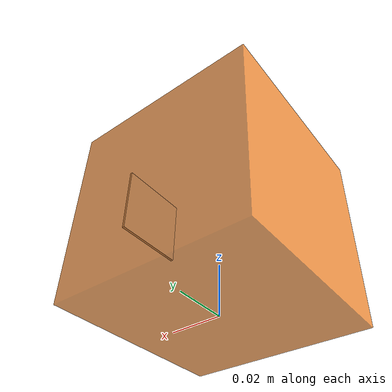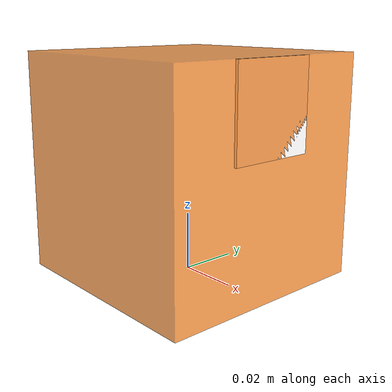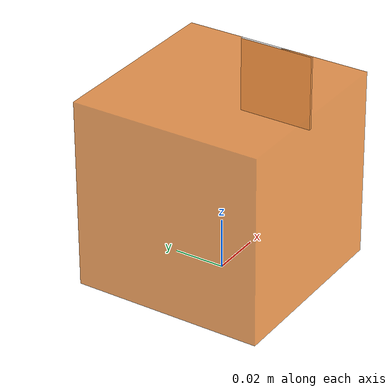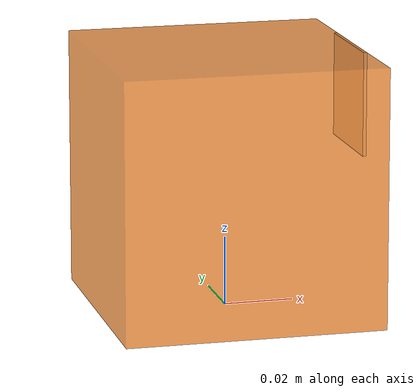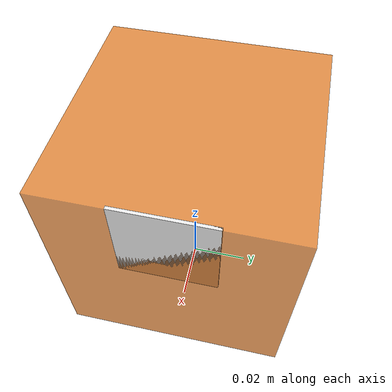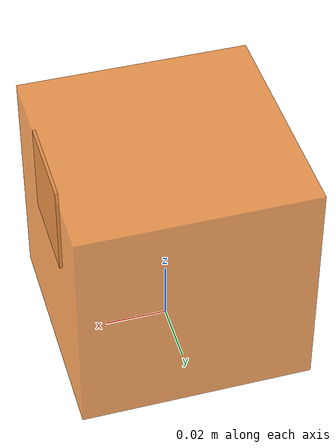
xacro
<?xml version="1.0" encoding="UTF-8" ?>
<robot name="prsg2_robot" xmlns:xacro="http://www.ros.org/wiki/xacro">

  <xacro:property name="degree" value="${pi / 180}" />
  <xacro:property name="inch" value="0.0254" />

  <xacro:property name="block_side" value="0.075" />
  <xacro:property name="fiducial_size" value="0.030" />
  <xacro:property name="fiducial_thickness" value="0.001" />
  <xacro:property name="fiducial_height"
                  value="${block_side - fiducial_size/2}" />

  <xacro:property name="goal_width" value="${9 * inch}" />
  <xacro:property name="goal_height" value="${6 * inch}" />
  <xacro:property name="goal_depth" value="${3.5 * inch}" />
  <xacro:property name="goal_thickness" value="3" />

  <xacro:macro name="material_color" params="r g b a:=1.0">
    <material name="color_${r}_${g}_${b}_{$a}">
      <color rgba="${r} ${g} ${b} ${a}" />
    </material>
  </xacro:macro>

  <!-- The block, as a cube -->
  <link name="block_shape">
    <visual>
      <origin xyz="0 0 ${block_side / 2}" rpy="0 0 0" />
      <geometry>
        <box size="${block_side} ${block_side} ${block_side}" />
      </geometry>
      <xacro:material_color r="0.95" g="0.45" b="0.03" a="0.7" />
    </visual>
  </link>

  <!-- The fiducial position -->
  <link name="mock_block">
    <visual>
      <origin xyz="${-fiducial_thickness/2} 0 0" rpy="0 0 0" />
      <geometry>
        <box size="${fiducial_thickness} ${fiducial_size} ${fiducial_size}" />
      </geometry>
      <xacro:material_color r="1" g="1" b="1" a="1.0" />
    </visual>
  </link>
  <joint name="block_shape_to_block" type="fixed">
    <parent link="block_shape" />
    <child link="mock_block" />
    <origin xyz="${block_side/2} 0 ${block_side - fiducial_size/2}" />
  </joint>

</robot>
